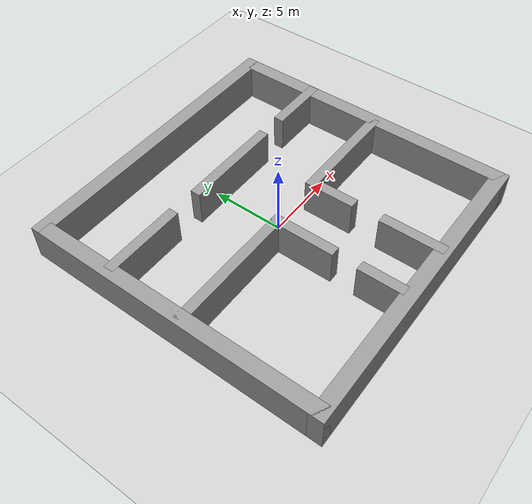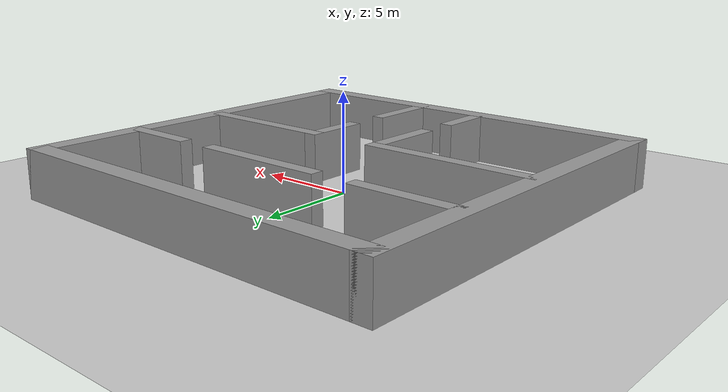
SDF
<sdf version="1.7">
 <world name="default">
  <light name="sun" type="directional">
   <pose>0 0 10 0 -0 0</pose>
   <diffuse>0.8 0.8 0.8 1</diffuse>
   <specular>0.2 0.2 0.2 1</specular>
   <attenuation>
    <range>1000</range>
    <constant>0.9</constant>
    <linear>0.01</linear>
    <quadratic>0.001</quadratic>
   </attenuation>
   <direction>-0.5 0.1 -0.9</direction>
   <spot><inner_angle>0</inner_angle><outer_angle>0</outer_angle><falloff>0</falloff></spot>
  </light>
  <model name="ground_plane">
   <static>1</static>
   <link name="link">
    <collision name="collision">
     <geometry><plane><normal>0 0 1</normal><size>100 100</size></plane></geometry>
     <surface><friction><ode><mu>100</mu><mu2>50</mu2></ode></friction></surface>
    </collision>
    <visual name="visual">
     <cast_shadows>0</cast_shadows>
     <geometry><plane><normal>0 0 1</normal><size>100 100</size></plane></geometry>
     <material>
      <script><uri>file://media/materials/scripts/gazebo.material</uri><name>Gazebo/Grey</name></script>
     </material>
    </visual>
   </link>
  </model>
  <gravity>0 0 -9.8</gravity>
  <magnetic_field>6e-06 2.3e-05 -4.2e-05</magnetic_field>
  <atmosphere type="adiabatic"/>
  <physics type="ode">
   <max_step_size>0.001</max_step_size>
   <real_time_factor>1</real_time_factor>
   <real_time_update_rate>1000</real_time_update_rate>
  </physics>
  <scene><ambient>0.4 0.4 0.4 1</ambient><background>0.7 0.7 0.7 1</background><shadows>1</shadows></scene>
  <spherical_coordinates>
   <surface_model>EARTH_WGS84</surface_model>
   <latitude_deg>0</latitude_deg>
   <longitude_deg>0</longitude_deg>
   <elevation>0</elevation>
   <heading_deg>0</heading_deg>
  </spherical_coordinates>
  <model name="demo03">
   <link name="Wall_0">
    <collision name="Wall_0_Collision">
     <geometry><box><size>21 1 2.5</size></box></geometry>
     <pose>0 0 1.25 0 -0 0</pose>
    </collision>
    <visual name="Wall_0_Visual">
     <pose>0 0 1.25 0 -0 0</pose>
     <geometry><box><size>21 1 2.5</size></box></geometry>
     <material>
      <script><uri>file://media/materials/scripts/gazebo.material</uri><name>Gazebo/Grey</name></script>
      <ambient>1 1 1 1</ambient>
     </material>
     <meta><layer>0</layer></meta>
    </visual>
    <pose>-10 0 0 0 -0 1.5708</pose>
   </link>
   <link name="Wall_11">
    <collision name="Wall_11_Collision">
     <geometry><box><size>4.5495 0.7 2.5</size></box></geometry>
     <pose>0 0 1.25 0 -0 0</pose>
    </collision>
    <visual name="Wall_11_Visual">
     <pose>0 0 1.25 0 -0 0</pose>
     <geometry><box><size>4.5495 0.7 2.5</size></box></geometry>
     <material>
      <script><uri>file://media/materials/scripts/gazebo.material</uri><name>Gazebo/Grey</name></script>
      <ambient>1 1 1 1</ambient>
     </material>
     <meta><layer>0</layer></meta>
    </visual>
    <pose>-1.251 -2.76 0 0 -0 -1.5708</pose>
   </link>
   <link name="Wall_13">
    <collision name="Wall_13_Collision">
     <geometry><box><size>3.0495 0.7 2.5</size></box></geometry>
     <pose>0 0 1.25 0 -0 0</pose>
    </collision>
    <visual name="Wall_13_Visual">
     <pose>0 0 1.25 0 -0 0</pose>
     <geometry><box><size>3.0495 0.7 2.5</size></box></geometry>
     <material>
      <script><uri>file://media/materials/scripts/gazebo.material</uri><name>Gazebo/Grey</name></script>
      <ambient>1 1 1 1</ambient>
     </material>
     <meta><layer>0</layer></meta>
    </visual>
    <pose>-1.251 -8.21 0 0 -0 -1.5708</pose>
   </link>
   <link name="Wall_15">
    <collision name="Wall_15_Collision">
     <geometry><box><size>4.37079 0.7 2.5</size></box></geometry>
     <pose>0 0 1.25 0 -0 0</pose>
    </collision>
    <visual name="Wall_15_Visual">
     <pose>0 0 1.25 0 -0 0</pose>
     <geometry><box><size>4.37079 0.7 2.5</size></box></geometry>
     <material>
      <script><uri>file://media/materials/scripts/gazebo.material</uri><name>Gazebo/Grey</name></script>
      <ambient>1 1 1 1</ambient>
     </material>
     <meta><layer>0</layer></meta>
    </visual>
    <pose>2.621 -7.9755 0 0 -0 1.5708</pose>
   </link>
   <link name="Wall_17">
    <collision name="Wall_17_Collision">
     <geometry><box><size>3.47943 0.7 2.5</size></box></geometry>
     <pose>0 0 1.25 0 -0 0</pose>
    </collision>
    <visual name="Wall_17_Visual">
     <pose>0 0 1.25 0 -0 0</pose>
     <geometry><box><size>3.47943 0.7 2.5</size></box></geometry>
     <material>
      <script><uri>file://media/materials/scripts/gazebo.material</uri><name>Gazebo/Grey</name></script>
      <ambient>1 1 1 1</ambient>
     </material>
     <meta><layer>0</layer></meta>
    </visual>
    <pose>2.621 -2.1505 0 0 -0 1.5708</pose>
   </link>
   <link name="Wall_18">
    <collision name="Wall_18_Collision">
     <geometry><box><size>7.79987 0.7 2.5</size></box></geometry>
     <pose>0 0 1.25 0 -0 0</pose>
    </collision>
    <visual name="Wall_18_Visual">
     <pose>0 0 1.25 0 -0 0</pose>
     <geometry><box><size>7.79987 0.7 2.5</size></box></geometry>
     <material>
      <script><uri>file://media/materials/scripts/gazebo.material</uri><name>Gazebo/Grey</name></script>
      <ambient>1 1 1 1</ambient>
     </material>
     <meta><layer>0</layer></meta>
    </visual>
    <pose>6.171 -0.761 0 0 -0 0</pose>
   </link>
   <link name="Wall_2">
    <collision name="Wall_2_Collision">
     <geometry><box><size>21 1 2.5</size></box></geometry>
     <pose>0 0 1.25 0 -0 0</pose>
    </collision>
    <visual name="Wall_2_Visual">
     <pose>0 0 1.25 0 -0 0</pose>
     <geometry><box><size>21 1 2.5</size></box></geometry>
     <material>
      <script><uri>file://media/materials/scripts/gazebo.material</uri><name>Gazebo/Grey</name></script>
      <ambient>1 1 1 1</ambient>
     </material>
     <meta><layer>0</layer></meta>
    </visual>
    <pose>0 -10 0 0 -0 0</pose>
   </link>
   <link name="Wall_22">
    <collision name="Wall_22_Collision">
     <geometry><box><size>5.55 0.7 2.5</size></box></geometry>
     <pose>0 0 1.25 0 -0 0</pose>
    </collision>
    <visual name="Wall_22_Visual">
     <pose>0 0 1.25 0 -0 0</pose>
     <geometry><box><size>5.55 0.7 2.5</size></box></geometry>
     <material>
      <script><uri>file://media/materials/scripts/gazebo.material</uri><name>Gazebo/Grey</name></script>
      <ambient>1 1 1 1</ambient>
     </material>
     <meta><layer>0</layer></meta>
    </visual>
    <pose>-7.211 4.631 0 0 -0 0</pose>
   </link>
   <link name="Wall_24">
    <collision name="Wall_24_Collision">
     <geometry><box><size>7.05 0.7 2.5</size></box></geometry>
     <pose>0 0 1.25 0 -0 0</pose>
    </collision>
    <visual name="Wall_24_Visual">
     <pose>0 0 1.25 0 -0 0</pose>
     <geometry><box><size>7.05 0.7 2.5</size></box></geometry>
     <material>
      <script><uri>file://media/materials/scripts/gazebo.material</uri><name>Gazebo/Grey</name></script>
      <ambient>1 1 1 1</ambient>
     </material>
     <meta><layer>0</layer></meta>
    </visual>
    <pose>0.989 4.561 0 0 -0 0</pose>
   </link>
   <link name="Wall_26">
    <collision name="Wall_26_Collision">
     <geometry><box><size>4.3 0.7 2.5</size></box></geometry>
     <pose>0 0 1.25 0 -0 0</pose>
    </collision>
    <visual name="Wall_26_Visual">
     <pose>0 0 1.25 0 -0 0</pose>
     <geometry><box><size>4.3 0.7 2.5</size></box></geometry>
     <material>
      <script><uri>file://media/materials/scripts/gazebo.material</uri><name>Gazebo/Grey</name></script>
      <ambient>1 1 1 1</ambient>
     </material>
     <meta><layer>0</layer></meta>
    </visual>
    <pose>8.314 4.561 0 0 -0 0</pose>
   </link>
   <link name="Wall_4">
    <collision name="Wall_4_Collision">
     <geometry><box><size>21 1 2.5</size></box></geometry>
     <pose>0 0 1.25 0 -0 0</pose>
    </collision>
    <visual name="Wall_4_Visual">
     <pose>0 0 1.25 0 -0 0</pose>
     <geometry><box><size>21 1 2.5</size></box></geometry>
     <material>
      <script><uri>file://media/materials/scripts/gazebo.material</uri><name>Gazebo/Grey</name></script>
      <ambient>1 1 1 1</ambient>
     </material>
     <meta><layer>0</layer></meta>
    </visual>
    <pose>10 0 0 0 -0 1.5708</pose>
   </link>
   <link name="Wall_6">
    <collision name="Wall_6_Collision">
     <geometry><box><size>21 1 2.5</size></box></geometry>
     <pose>0 0 1.25 0 -0 0</pose>
    </collision>
    <visual name="Wall_6_Visual">
     <pose>0 0 1.25 0 -0 0</pose>
     <geometry><box><size>21 1 2.5</size></box></geometry>
     <material>
      <script><uri>file://media/materials/scripts/gazebo.material</uri><name>Gazebo/Grey</name></script>
      <ambient>1 1 1 1</ambient>
     </material>
     <meta><layer>0</layer></meta>
    </visual>
    <pose>0 10 0 0 -0 0</pose>
   </link>
   <link name="Wall_8">
    <collision name="Wall_8_Collision">
     <geometry><box><size>9.3 0.7 2.5</size></box></geometry>
     <pose>0 0 1.25 0 -0 0</pose>
    </collision>
    <visual name="Wall_8_Visual">
     <pose>0 0 1.25 0 -0 0</pose>
     <geometry><box><size>9.3 0.7 2.5</size></box></geometry>
     <material>
      <script><uri>file://media/materials/scripts/gazebo.material</uri><name>Gazebo/Grey</name></script>
      <ambient>1 1 1 1</ambient>
     </material>
     <meta><layer>0</layer></meta>
    </visual>
    <pose>-5.551 -0.835 0 0 -0 0</pose>
   </link>
   <static>1</static>
  </model>
 </world>
</sdf>
